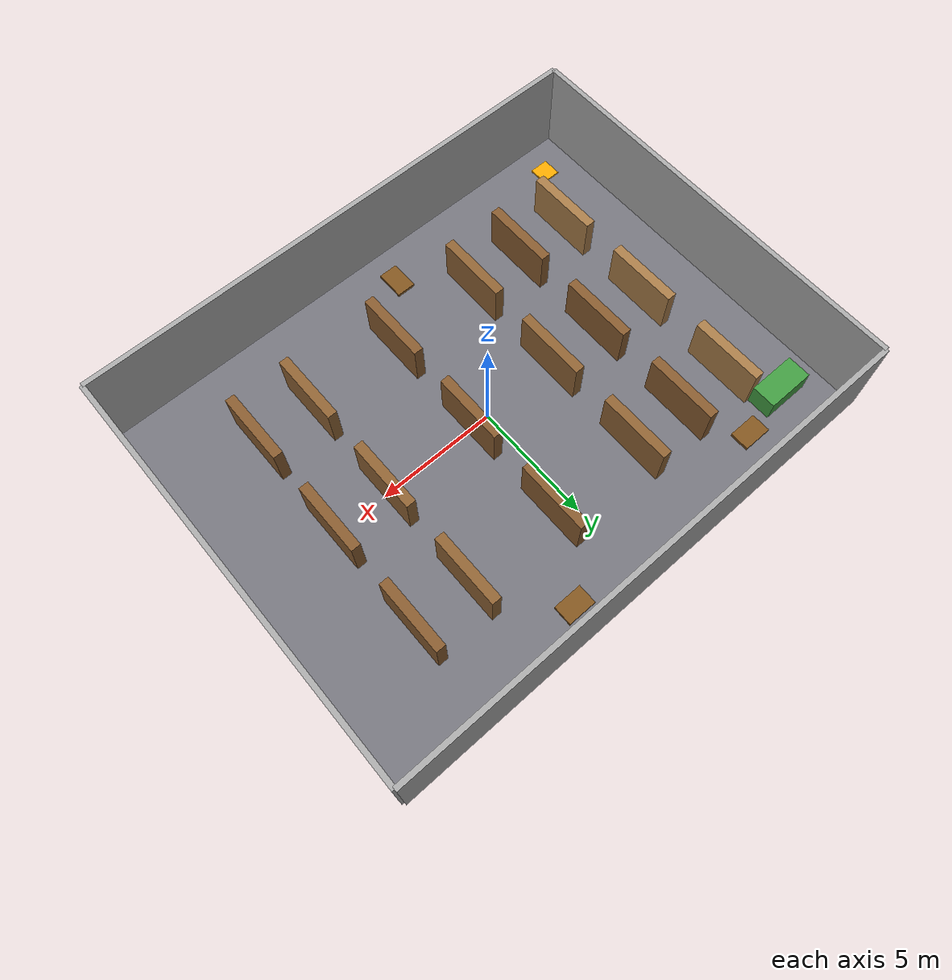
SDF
<sdf version="1.6">
 <world name="warehouse">
  <physics name="default_physics" default="true" type="ode">
   <max_step_size>0.001</max_step_size>
   <real_time_factor>1</real_time_factor>
   <real_time_update_rate>1000</real_time_update_rate>
  </physics>
  <scene><ambient>0.5 0.5 0.5 1</ambient><background>0.1 0.1 0.12 1</background><shadows>true</shadows></scene>
  <light name="directional_light" type="directional">
   <pose>0 0 20 0.1 0.1 0</pose>
   <diffuse>0.9 0.9 0.9 1</diffuse>
   <specular>0.2 0.2 0.2 1</specular>
   <direction>-0.5 0.2 -0.9</direction>
  </light>
  <light name="ceiling_1" type="point">
   <pose>-7  0 5 0 0 0</pose>
   <diffuse>0.95 0.95 0.90 1</diffuse>
   <attenuation><range>20</range><constant>0.3</constant><linear>0.02</linear></attenuation>
   <cast_shadows>false</cast_shadows>
  </light>
  <light name="ceiling_2" type="point">
   <pose>0  0 5 0 0 0</pose>
   <diffuse>0.95 0.95 0.90 1</diffuse>
   <attenuation><range>20</range><constant>0.3</constant><linear>0.02</linear></attenuation>
   <cast_shadows>false</cast_shadows>
  </light>
  <light name="ceiling_3" type="point">
   <pose>7  0 5 0 0 0</pose>
   <diffuse>0.95 0.95 0.90 1</diffuse>
   <attenuation><range>20</range><constant>0.3</constant><linear>0.02</linear></attenuation>
   <cast_shadows>false</cast_shadows>
  </light>
  <model name="floor">
   <static>true</static>
   <pose>0 0 -0.05 0 0 0</pose>
   <link name="link">
    <collision name="col"><geometry><box><size>22 17 0.1</size></box></geometry></collision>
    <visual name="vis">
     <geometry><box><size>22 17 0.1</size></box></geometry>
     <material>
      <ambient>0.35 0.35 0.38 1</ambient>
      <diffuse>0.45 0.45 0.48 1</diffuse>
      <specular>0.05 0.05 0.05 1</specular>
     </material>
    </visual>
   </link>
  </model>
  <model name="wall_N">
   <static>true</static>
   <pose>0 8.6 2 0 0 0</pose>
   <link name="l">
    <collision name="c"><geometry><box><size>22 0.2 4</size></box></geometry></collision>
    <visual name="v">
     <geometry><box><size>22 0.2 4</size></box></geometry>
     <material><ambient>0.65 0.65 0.65 1</ambient></material>
    </visual>
   </link>
  </model>
  <model name="wall_S">
   <static>true</static>
   <pose>0 -8.6 2 0 0 0</pose>
   <link name="l">
    <collision name="c"><geometry><box><size>22 0.2 4</size></box></geometry></collision>
    <visual name="v">
     <geometry><box><size>22 0.2 4</size></box></geometry>
     <material><ambient>0.65 0.65 0.65 1</ambient></material>
    </visual>
   </link>
  </model>
  <model name="wall_E">
   <static>true</static>
   <pose>11 0 2 0 0 0</pose>
   <link name="l">
    <collision name="c"><geometry><box><size>0.2 17.2 4</size></box></geometry></collision>
    <visual name="v">
     <geometry><box><size>0.2 17.2 4</size></box></geometry>
     <material><ambient>0.65 0.65 0.65 1</ambient></material>
    </visual>
   </link>
  </model>
  <model name="wall_W">
   <static>true</static>
   <pose>-11 0 2 0 0 0</pose>
   <link name="l">
    <collision name="c"><geometry><box><size>0.2 17.2 4</size></box></geometry></collision>
    <visual name="v">
     <geometry><box><size>0.2 17.2 4</size></box></geometry>
     <material><ambient>0.65 0.65 0.65 1</ambient></material>
    </visual>
   </link>
  </model>
  <model name="shelf_A1">
   <static>true</static>
   <pose>-8.0 -4.5 1.0 0 0 0</pose>
   <link name="l">
    <collision name="c"><geometry><box><size>0.4 3.0 2.0</size></box></geometry></collision>
    <visual name="v">
     <geometry><box><size>0.4 3.0 2.0</size></box></geometry>
     <material><ambient>0.55 0.38 0.20 1</ambient><diffuse>0.65 0.48 0.28 1</diffuse></material>
    </visual>
   </link>
  </model>
  <model name="shelf_A2">
   <static>true</static>
   <pose>-8.0  0.0 1.0 0 0 0</pose>
   <link name="l">
    <collision name="c"><geometry><box><size>0.4 3.0 2.0</size></box></geometry></collision>
    <visual name="v">
     <geometry><box><size>0.4 3.0 2.0</size></box></geometry>
     <material><ambient>0.55 0.38 0.20 1</ambient><diffuse>0.65 0.48 0.28 1</diffuse></material>
    </visual>
   </link>
  </model>
  <model name="shelf_A3">
   <static>true</static>
   <pose>-8.0  4.5 1.0 0 0 0</pose>
   <link name="l">
    <collision name="c"><geometry><box><size>0.4 3.0 2.0</size></box></geometry></collision>
    <visual name="v">
     <geometry><box><size>0.4 3.0 2.0</size></box></geometry>
     <material><ambient>0.55 0.38 0.20 1</ambient><diffuse>0.65 0.48 0.28 1</diffuse></material>
    </visual>
   </link>
  </model>
  <model name="shelf_B1">
   <static>true</static>
   <pose>-5.6 -4.5 1.0 0 0 0</pose>
   <link name="l">
    <collision name="c"><geometry><box><size>0.4 3.0 2.0</size></box></geometry></collision>
    <visual name="v">
     <geometry><box><size>0.4 3.0 2.0</size></box></geometry>
     <material><ambient>0.52 0.35 0.18 1</ambient></material>
    </visual>
   </link>
  </model>
  <model name="shelf_B2">
   <static>true</static>
   <pose>-5.6  0.0 1.0 0 0 0</pose>
   <link name="l">
    <collision name="c"><geometry><box><size>0.4 3.0 2.0</size></box></geometry></collision>
    <visual name="v">
     <geometry><box><size>0.4 3.0 2.0</size></box></geometry>
     <material><ambient>0.52 0.35 0.18 1</ambient></material>
    </visual>
   </link>
  </model>
  <model name="shelf_B3">
   <static>true</static>
   <pose>-5.6  4.5 1.0 0 0 0</pose>
   <link name="l">
    <collision name="c"><geometry><box><size>0.4 3.0 2.0</size></box></geometry></collision>
    <visual name="v">
     <geometry><box><size>0.4 3.0 2.0</size></box></geometry>
     <material><ambient>0.52 0.35 0.18 1</ambient></material>
    </visual>
   </link>
  </model>
  <model name="shelf_C1">
   <static>true</static>
   <pose>-3.2 -4.5 1.0 0 0 0</pose>
   <link name="l">
    <collision name="c"><geometry><box><size>0.4 3.0 2.0</size></box></geometry></collision>
    <visual name="v">
     <geometry><box><size>0.4 3.0 2.0</size></box></geometry>
     <material><ambient>0.55 0.38 0.20 1</ambient></material>
    </visual>
   </link>
  </model>
  <model name="shelf_C2">
   <static>true</static>
   <pose>-3.2  0.0 1.0 0 0 0</pose>
   <link name="l">
    <collision name="c"><geometry><box><size>0.4 3.0 2.0</size></box></geometry></collision>
    <visual name="v">
     <geometry><box><size>0.4 3.0 2.0</size></box></geometry>
     <material><ambient>0.55 0.38 0.20 1</ambient></material>
    </visual>
   </link>
  </model>
  <model name="shelf_C3">
   <static>true</static>
   <pose>-3.2  4.5 1.0 0 0 0</pose>
   <link name="l">
    <collision name="c"><geometry><box><size>0.4 3.0 2.0</size></box></geometry></collision>
    <visual name="v">
     <geometry><box><size>0.4 3.0 2.0</size></box></geometry>
     <material><ambient>0.55 0.38 0.20 1</ambient></material>
    </visual>
   </link>
  </model>
  <model name="shelf_D1">
   <static>true</static>
   <pose>0.8 -4.5 1.0 0 0 0</pose>
   <link name="l">
    <collision name="c"><geometry><box><size>0.4 3.0 2.0</size></box></geometry></collision>
    <visual name="v">
     <geometry><box><size>0.4 3.0 2.0</size></box></geometry>
     <material><ambient>0.52 0.35 0.18 1</ambient></material>
    </visual>
   </link>
  </model>
  <model name="shelf_D2">
   <static>true</static>
   <pose>0.8  0.0 1.0 0 0 0</pose>
   <link name="l">
    <collision name="c"><geometry><box><size>0.4 3.0 2.0</size></box></geometry></collision>
    <visual name="v">
     <geometry><box><size>0.4 3.0 2.0</size></box></geometry>
     <material><ambient>0.52 0.35 0.18 1</ambient></material>
    </visual>
   </link>
  </model>
  <model name="shelf_D3">
   <static>true</static>
   <pose>0.8  4.5 1.0 0 0 0</pose>
   <link name="l">
    <collision name="c"><geometry><box><size>0.4 3.0 2.0</size></box></geometry></collision>
    <visual name="v">
     <geometry><box><size>0.4 3.0 2.0</size></box></geometry>
     <material><ambient>0.52 0.35 0.18 1</ambient></material>
    </visual>
   </link>
  </model>
  <model name="shelf_E1">
   <static>true</static>
   <pose>4.8 -4.5 1.0 0 0 0</pose>
   <link name="l">
    <collision name="c"><geometry><box><size>0.4 3.0 2.0</size></box></geometry></collision>
    <visual name="v">
     <geometry><box><size>0.4 3.0 2.0</size></box></geometry>
     <material><ambient>0.55 0.38 0.20 1</ambient></material>
    </visual>
   </link>
  </model>
  <model name="shelf_E2">
   <static>true</static>
   <pose>4.8  0.0 1.0 0 0 0</pose>
   <link name="l">
    <collision name="c"><geometry><box><size>0.4 3.0 2.0</size></box></geometry></collision>
    <visual name="v">
     <geometry><box><size>0.4 3.0 2.0</size></box></geometry>
     <material><ambient>0.55 0.38 0.20 1</ambient></material>
    </visual>
   </link>
  </model>
  <model name="shelf_E3">
   <static>true</static>
   <pose>4.8  4.5 1.0 0 0 0</pose>
   <link name="l">
    <collision name="c"><geometry><box><size>0.4 3.0 2.0</size></box></geometry></collision>
    <visual name="v">
     <geometry><box><size>0.4 3.0 2.0</size></box></geometry>
     <material><ambient>0.55 0.38 0.20 1</ambient></material>
    </visual>
   </link>
  </model>
  <model name="shelf_F1">
   <static>true</static>
   <pose>7.2 -4.5 1.0 0 0 0</pose>
   <link name="l">
    <collision name="c"><geometry><box><size>0.4 3.0 2.0</size></box></geometry></collision>
    <visual name="v">
     <geometry><box><size>0.4 3.0 2.0</size></box></geometry>
     <material><ambient>0.52 0.35 0.18 1</ambient></material>
    </visual>
   </link>
  </model>
  <model name="shelf_F2">
   <static>true</static>
   <pose>7.2  0.0 1.0 0 0 0</pose>
   <link name="l">
    <collision name="c"><geometry><box><size>0.4 3.0 2.0</size></box></geometry></collision>
    <visual name="v">
     <geometry><box><size>0.4 3.0 2.0</size></box></geometry>
     <material><ambient>0.52 0.35 0.18 1</ambient></material>
    </visual>
   </link>
  </model>
  <model name="shelf_F3">
   <static>true</static>
   <pose>7.2  4.5 1.0 0 0 0</pose>
   <link name="l">
    <collision name="c"><geometry><box><size>0.4 3.0 2.0</size></box></geometry></collision>
    <visual name="v">
     <geometry><box><size>0.4 3.0 2.0</size></box></geometry>
     <material><ambient>0.52 0.35 0.18 1</ambient></material>
    </visual>
   </link>
  </model>
  <model name="charging_dock">
   <static>true</static>
   <pose>-9.5 -7.2 0.04 0 0 0</pose>
   <link name="l">
    <collision name="c"><geometry><box><size>0.8 0.8 0.08</size></box></geometry></collision>
    <visual name="v">
     <geometry><box><size>0.8 0.8 0.08</size></box></geometry>
     <material><ambient>0.9 0.5 0.0 1</ambient><diffuse>1.0 0.65 0.0 1</diffuse></material>
    </visual>
   </link>
  </model>
  <model name="packing_station">
   <static>true</static>
   <pose>-9.0 6.5 0.5 0 0 0</pose>
   <link name="l">
    <collision name="c"><geometry><box><size>2.0 1.0 1.0</size></box></geometry></collision>
    <visual name="v">
     <geometry><box><size>2.0 1.0 1.0</size></box></geometry>
     <material><ambient>0.15 0.45 0.15 1</ambient><diffuse>0.25 0.60 0.25 1</diffuse></material>
    </visual>
   </link>
  </model>
  <model name="pallet_1">
   <static>true</static>
   <pose>-7.0 7.0 0.07 0 0 0</pose>
   <link name="l">
    <collision name="c"><geometry><box><size>1.2 0.8 0.14</size></box></geometry></collision>
    <visual name="v">
     <geometry><box><size>1.2 0.8 0.14</size></box></geometry>
     <material><ambient>0.50 0.33 0.12 1</ambient></material>
    </visual>
   </link>
  </model>
  <model name="pallet_2">
   <static>true</static>
   <pose>2.5 7.5 0.07 0 0 0</pose>
   <link name="l">
    <collision name="c"><geometry><box><size>1.2 0.8 0.14</size></box></geometry></collision>
    <visual name="v">
     <geometry><box><size>1.2 0.8 0.14</size></box></geometry>
     <material><ambient>0.50 0.33 0.12 1</ambient></material>
    </visual>
   </link>
  </model>
  <model name="pallet_3">
   <static>true</static>
   <pose>-1.2 -7.0 0.07 0 0 0</pose>
   <link name="l">
    <collision name="c"><geometry><box><size>0.8 1.2 0.14</size></box></geometry></collision>
    <visual name="v">
     <geometry><box><size>0.8 1.2 0.14</size></box></geometry>
     <material><ambient>0.50 0.33 0.12 1</ambient></material>
    </visual>
   </link>
  </model>
 </world>
</sdf>
